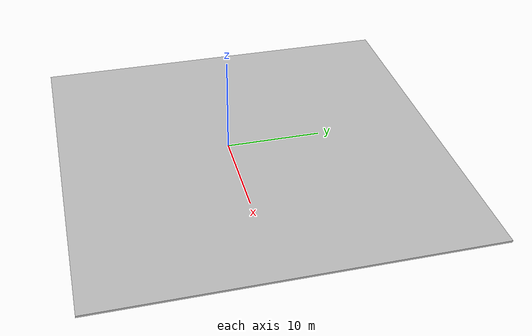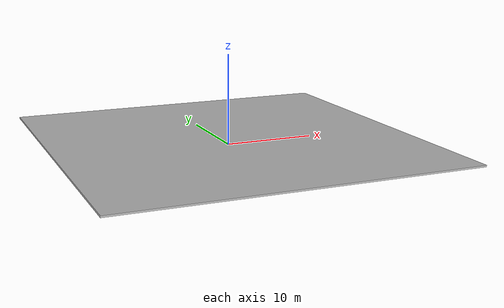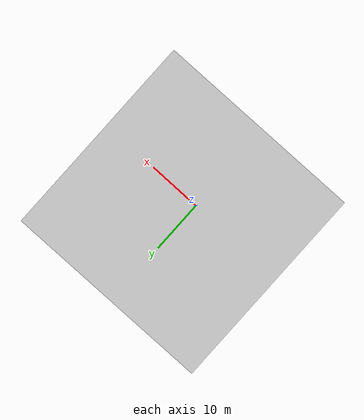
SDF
<?xml version="1.0"?>
<sdf version="1.4">
  <world name="default">
    <light name='sun' type='directional'>
      <cast_shadows>1</cast_shadows>
      <pose>0 0 10 0 -0 0</pose>
      <diffuse>0.8 0.8 0.8 1</diffuse>
      <specular>0.2 0.2 0.2 1</specular>
      <attenuation>
        <range>1000</range>
        <constant>0.9</constant>
        <linear>0.01</linear>
        <quadratic>0.001</quadratic>
      </attenuation>
      <direction>-0.5 0.1 -0.9</direction>
      <spot>
        <inner_angle>0</inner_angle>
        <outer_angle>0</outer_angle>
        <falloff>0</falloff>
      </spot>
    </light>
    <model name="ground">
      <pose>1 2.3 -.1 0 0 0</pose>
      <static>1</static>
      <link name="ground">
        <collision name="ground_coll">
          <geometry>
            <box>
              <size>40 40 0.199</size>
            </box>
          </geometry>
          <surface>
            <contact>
              <ode/>
            </contact>
          </surface>
        </collision>
        <visual name="ground_vis">
          <geometry>
            <box>
              <size>40 40 0.199</size>
            </box>
          </geometry>
          <material>
            <script>
              <uri>file://course.material</uri>
              <name>course</name>
            </script>
          </material>
        </visual>
      </link>
    </model>
  </world>
</sdf>
